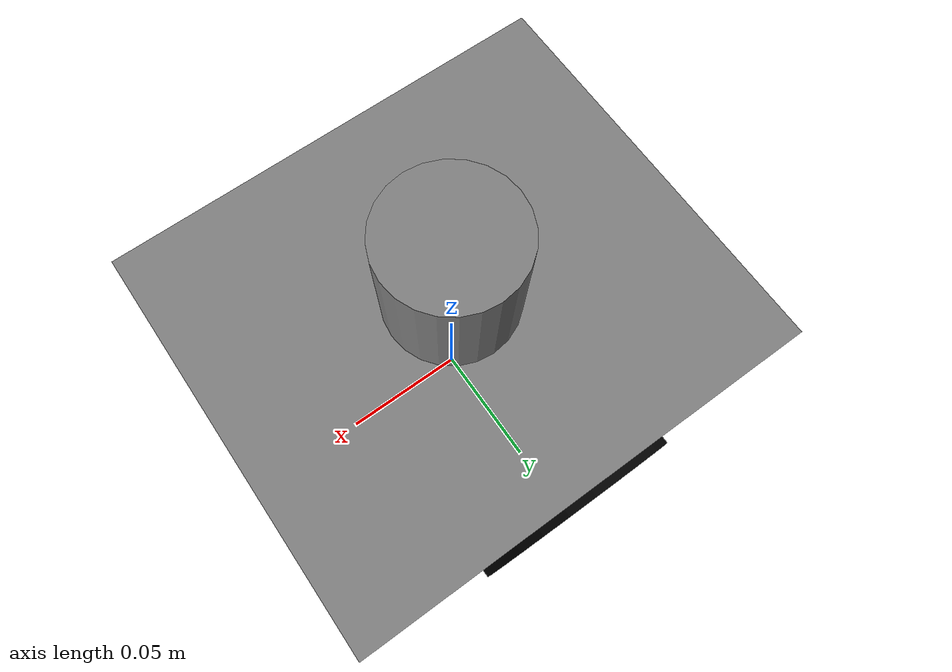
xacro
<robot xmlns:xacro="http://www.ros.org/wiki/xacro" name="lego_robot">

  <!-- MATERIALS -->
  <material name="gray">
    <color rgba="0.5 0.5 0.5 1.0"/>
  </material>
  <material name="black">
    <color rgba="0 0 0 1.0"/>
  </material>

  <!-- BASE FOOTPRINT -->
  <link name="base_footprint"> </link>

  <!-- BASE LINK -->
  <link name="base_link">
    <visual>
      <geometry>
        <box size="0.18 0.159  0.05"/>
      </geometry>
      <material name="gray"/>
    </visual>
    <collision>
      <geometry>
        <box size="0.18 0.159 0.05"/>
      </geometry>
    </collision>
    <inertial>
      <mass value="1.0"/>
      <origin xyz="0 0 0" rpy="0 0 0"/>
      <inertia ixx="0.001" iyy="0.001" izz="0.001"
               ixy="0" ixz="0" iyz="0"/>
    </inertial>
  </link>

    <!-- JOINT base_footprint → base_link -->
  <joint name="footprint_to_base" type="fixed">
    <parent link="base_footprint"/>
    <child link="base_link"/>
    <origin xyz="0 0 0.055" rpy="0 0 0"/>
  </joint>

  <!-- LEFT WHEEL -->
  <link name="left_wheel">
    <visual>
      <origin xyz="0 0 0" rpy="1.5708 1.5708 0"/>
      <geometry>
        <cylinder radius="0.042" length="0.015"/>
      </geometry>
      <material name="black"/>
    </visual>
    <collision>
      <origin xyz="0 0 0" rpy="0 1.5708 0"/>
      <geometry>
        <cylinder radius="0.042" length="0.015"/>
      </geometry>
    </collision>
    <inertial>
      <mass value="0.1"/>
      <origin xyz="0 0 0" rpy="0 1.5708 0"/>
      <inertia ixx="0.001" iyy="0.001" izz="0.001"
               ixy="0" ixz="0" iyz="0"/>
    </inertial>
  </link>

  <!-- RIGHT WHEEL -->
  <link name="right_wheel">
    <visual>
      <origin xyz="0 0 0" rpy="1.5708 1.5708 0"/>
      <geometry>
        <cylinder radius="0.03" length="0.02"/>
      </geometry>
      <material name="black"/>
    </visual>
    <collision>
      <origin xyz="0 0 0" rpy="0 1.5708 0"/>
      <geometry>
        <cylinder radius="0.03" length="0.02"/>
      </geometry>
    </collision>
    <inertial>
      <mass value="0.1"/>
      <origin xyz="0 0 0" rpy="0 1.5708 0"/>
      <inertia ixx="0.001" iyy="0.001" izz="0.001"
               ixy="0" ixz="0" iyz="0"/>
    </inertial>
  </link>

  <!-- CASTER BALL -->
  <link name="caster_wheel">
    <visual>
      <geometry>
        <sphere radius="0.015"/>
      </geometry>
      <material name="black"/>
    </visual>
    <collision>
      <geometry>
        <sphere radius="0.015"/>
      </geometry>
    </collision>
    <inertial>
      <mass value="0.05"/>
      <origin xyz="0 0 0" rpy="0 0 0"/>
      <inertia ixx="0.0001" iyy="0.0001" izz="0.0001"
               ixy="0" ixz="0" iyz="0"/>
    </inertial>
  </link>

  <!-- LIDAR -->
  <link name="lidar_link">
    <visual>
      <geometry>
        <cylinder radius="0.025" length="0.05"/>
      </geometry>
      <material name="gray"/>
    </visual>
    <collision>
      <geometry>
        <cylinder radius="0.025" length="0.05"/>
      </geometry>
    </collision>
    <inertial>
      <mass value="0.1"/>
      <origin xyz="0 0 0" rpy="0 0 0"/>
      <inertia ixx="0.001" iyy="0.001" izz="0.001"
               ixy="0" ixz="0" iyz="0"/>
    </inertial>
  </link>

  <!-- JOINTS -->
  <joint name="left_wheel_joint" type="continuous">
    <parent link="base_link"/>
    <child link="left_wheel"/>
    <origin xyz="0 0.075 -0.025" rpy="0 0 0"/>
    <axis xyz="0 1 0"/>
  </joint>

  <joint name="right_wheel_joint" type="continuous">
    <parent link="base_link"/>
    <child link="right_wheel"/>
    <origin xyz="0 -0.075 -0.025" rpy="0 0 0"/>
    <axis xyz="0 1 0"/>
  </joint>

  <joint name="caster_joint" type="fixed">
    <parent link="base_link"/>
    <child link="caster_wheel"/>
    <origin xyz="0.08 0 -0.025" rpy="0 0 0"/>
  </joint>

  <joint name="lidar_joint" type="fixed">
    <parent link="base_link"/>
    <child link="lidar_link"/>
    <origin xyz="0 0 0.05" rpy="0 0 0"/>
  </joint>

</robot>
